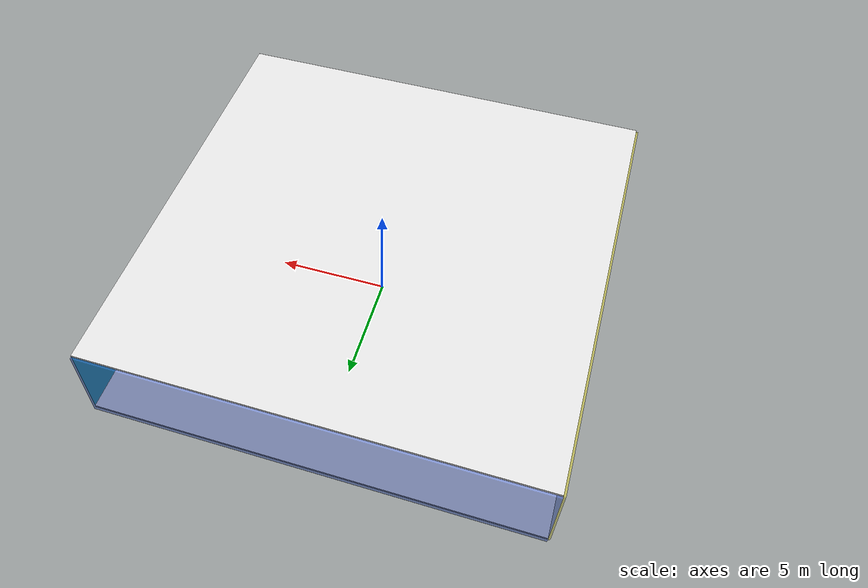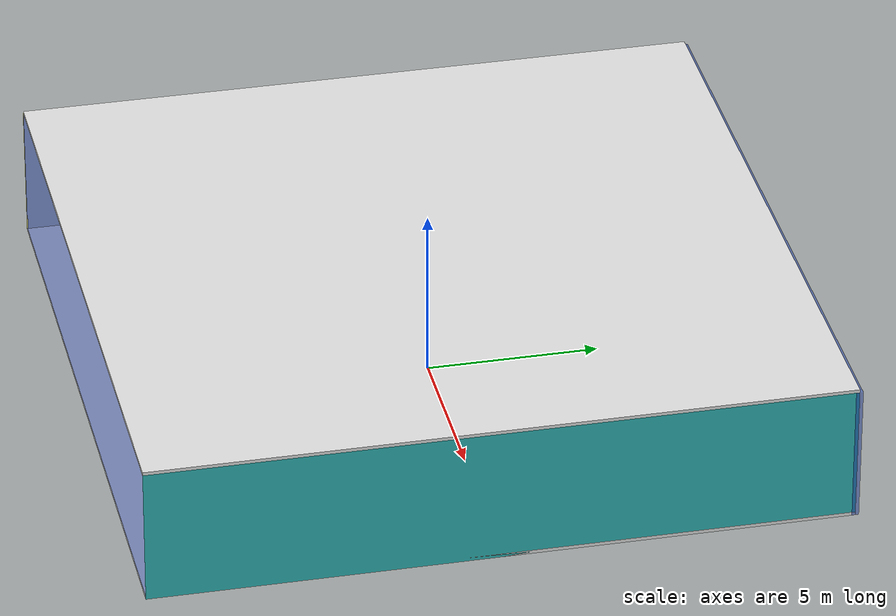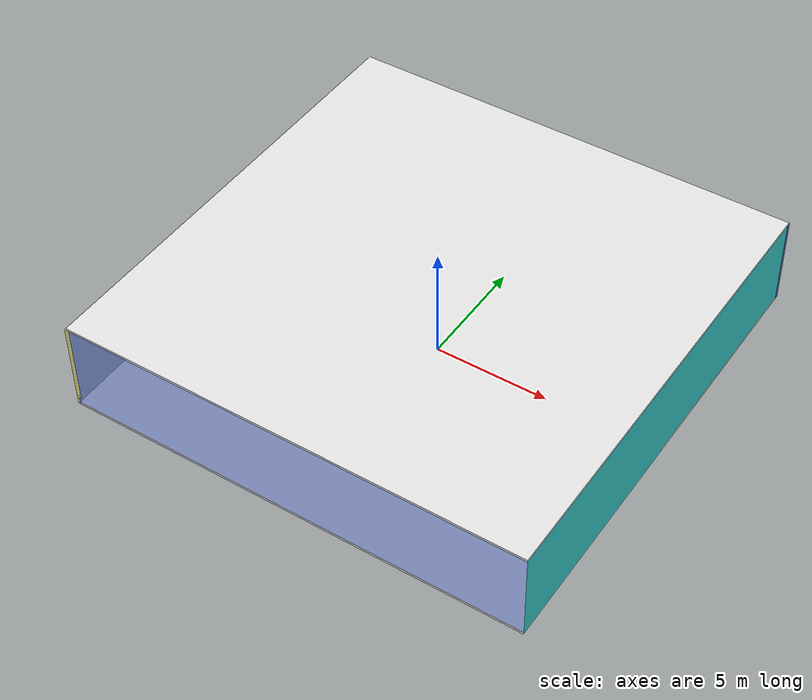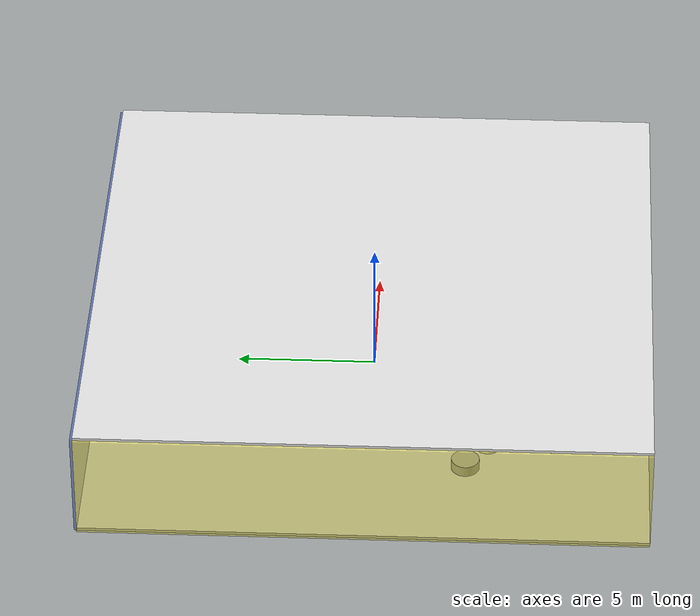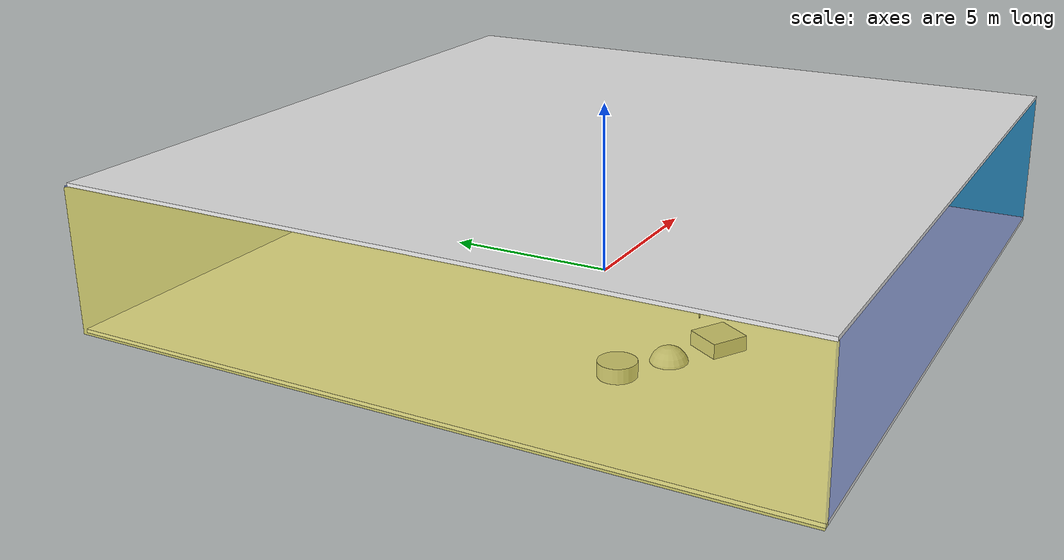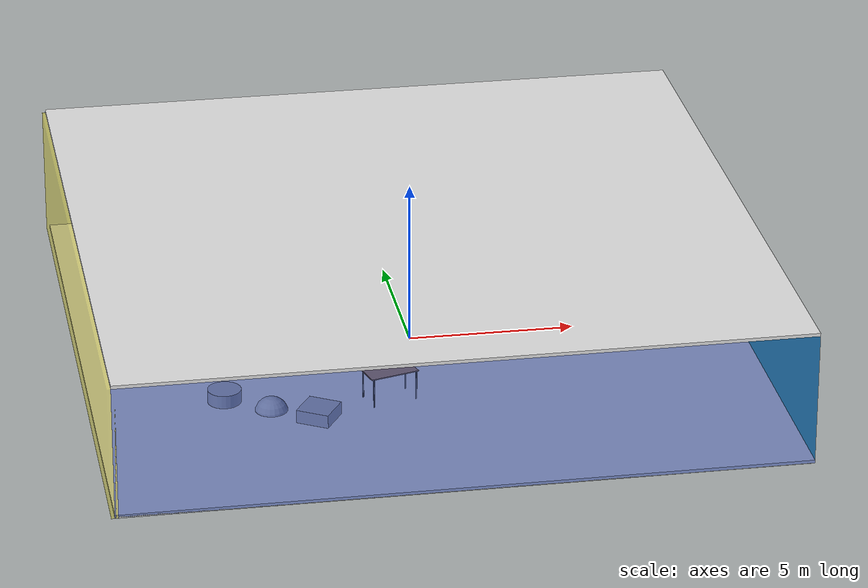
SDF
<sdf version="1.4">
 <world name="default">
  <physics type="ode">
   <max_step_size>0.001</max_step_size>
   <real_time_factor>1</real_time_factor>
   <real_time_update_rate>1000</real_time_update_rate>
   <gravity>0 0 -9.8</gravity>
  </physics>
  <scene><ambient>0.4 0.4 0.4 1</ambient><background>0.7 0.7 0.7 1</background><shadows>1</shadows></scene>
  <model name="Surrounding">
   <static>1</static>
   <link name="Ceiling">
    <collision name="Ceiling_Collision"><geometry><box><size>20 20 0.1</size></box></geometry></collision>
    <visual name="Ceiling_Visual">
     <geometry><box><size>20 20 0.1</size></box></geometry>
     <material>
      <script><uri>file://media/materials/scripts/gazebo.material</uri><name>Gazebo/White</name></script>
     </material>
    </visual>
    <pose>0 0 4.05 0 0 0</pose>
   </link>
   <link name="Wall_South">
    <collision name="Wall_South_Collision">
     <geometry><box><size>20 0 4</size></box></geometry>
     <pose>0 0 2 0 -0 0</pose>
    </collision>
    <visual name="Wall_South_Visual">
     <pose>0 0 2 0 -0 0</pose>
     <geometry><box><size>20 0 4</size></box></geometry>
     <material>
      <script><uri>file://media/materials/scripts/gazebo.material</uri><name>Gazebo/BlueTransparent</name></script>
     </material>
    </visual>
    <velocity_decay><linear>0</linear><angular>0</angular></velocity_decay>
    <pose>0 -10 0 0 -0 0</pose>
   </link>
   <link name="Wall_East">
    <collision name="Wall_21_Collision">
     <geometry><box><size>20 0 4</size></box></geometry>
     <pose>0 0 2 0 -0 0</pose>
    </collision>
    <visual name="Wall_21_Visual">
     <pose>0 0 2 0 -0 0</pose>
     <geometry><box><size>20 0 4</size></box></geometry>
     <material>
      <script>
       <uri>file://media/materials/scripts/gazebo.material</uri>
       <name>Gazebo/TurquoiseGlowOutline</name>
      </script>
     </material>
    </visual>
    <velocity_decay><linear>0</linear><angular>0</angular></velocity_decay>
    <pose>10 0 0 0 -0 1.5708</pose>
   </link>
   <link name="Wall_North">
    <collision name="Wall_22_Collision">
     <geometry><box><size>20 0.2 4</size></box></geometry>
     <pose>0 0 2 0 -0 0</pose>
    </collision>
    <visual name="Wall_22_Visual">
     <pose>0 0 2 0 -0 0</pose>
     <geometry><box><size>20 0.2 4</size></box></geometry>
     <material>
      <script><uri>file://media/materials/scripts/gazebo.material</uri><name>Gazebo/BlueTransparent</name></script>
     </material>
    </visual>
    <velocity_decay><linear>0</linear><angular>0</angular></velocity_decay>
    <pose>0 10 0 0 -0 0</pose>
   </link>
   <link name="Wall_West">
    <collision name="Wall_23_Collision">
     <geometry><box><size>20 0.2 4</size></box></geometry>
     <pose>0 0 2 0 -0 0</pose>
    </collision>
    <visual name="Wall_23_Visual">
     <pose>0 0 2 0 -0 0</pose>
     <geometry><box><size>20 0.2 4</size></box></geometry>
     <material>
      <script>
       <uri>file://media/materials/scripts/gazebo.material</uri>
       <name>Gazebo/YellowTransparent</name>
      </script>
     </material>
    </visual>
    <velocity_decay><linear>0</linear><angular>0</angular></velocity_decay>
    <pose>-10 0 0 0 0 -1.5708</pose>
   </link>
   <link name="Ground_link">
    <collision name="collision">
     <pose>0 0 .05 0 -0 0</pose>
     <geometry><box><size>20 20 0.1</size></box></geometry>
    </collision>
    <visual name="visual">
     <pose>0 0 .05 0 -0 0</pose>
     <geometry><box><size>20 20 0.1</size></box></geometry>
     <material>
      <script><uri>file://media/materials/scripts/gazebo.material</uri><name>Gazebo/WhiteGlow</name></script>
     </material>
    </visual>
   </link>
   <static>1</static>
  </model>
  <spherical_coordinates>
   <surface_model>EARTH_WGS84</surface_model>
   <latitude_deg>0</latitude_deg>
   <longitude_deg>0</longitude_deg>
   <elevation>0</elevation>
   <heading_deg>0</heading_deg>
  </spherical_coordinates>
  <light name="lightball_0" type="diffuse">
   <diffuse>0.8 0.8 0.8 1</diffuse>
   <specular>0.2 0.2 0.2 1</specular>
   <attenuation>
    <range>100</range>
    <constant>0.7</constant>
    <linear>0.01</linear>
    <quadratic>0.001</quadratic>
   </attenuation>
   <direction>-0.5 0.1 -0.9</direction>
   <pose>5.11674598602 -7.29430345891 2.63261148792 0 0 0</pose>
  </light>
  <light name="lightball_1" type="diffuse">
   <diffuse>0.8 0.8 0.8 1</diffuse>
   <specular>0.2 0.2 0.2 1</specular>
   <attenuation>
    <range>100</range>
    <constant>0.7</constant>
    <linear>0.01</linear>
    <quadratic>0.001</quadratic>
   </attenuation>
   <direction>-0.5 0.1 -0.9</direction>
   <pose>8.55021767449 -7.47615077715 1.38534424696 0 0 0</pose>
  </light>
  <light name="lightball_2" type="diffuse">
   <diffuse>0.8 0.8 0.8 1</diffuse>
   <specular>0.2 0.2 0.2 1</specular>
   <attenuation>
    <range>100</range>
    <constant>0.7</constant>
    <linear>0.01</linear>
    <quadratic>0.001</quadratic>
   </attenuation>
   <direction>-0.5 0.1 -0.9</direction>
   <pose>-9.59768443067 -1.84598486549 2.13903515653 0 0 0</pose>
  </light>
  <light name="lightball_3" type="diffuse">
   <diffuse>0.8 0.8 0.8 1</diffuse>
   <specular>0.2 0.2 0.2 1</specular>
   <attenuation>
    <range>100</range>
    <constant>0.7</constant>
    <linear>0.01</linear>
    <quadratic>0.001</quadratic>
   </attenuation>
   <direction>-0.5 0.1 -0.9</direction>
   <pose>-5.85292087503 1.89759735936 3.22783219008 0 0 0</pose>
  </light>
  <light name="lightball_4" type="diffuse">
   <diffuse>0.8 0.8 0.8 1</diffuse>
   <specular>0.2 0.2 0.2 1</specular>
   <attenuation>
    <range>100</range>
    <constant>0.7</constant>
    <linear>0.01</linear>
    <quadratic>0.001</quadratic>
   </attenuation>
   <direction>-0.5 0.1 -0.9</direction>
   <pose>-9.84288912503 -7.74594865556 0.71273378439 0 0 0</pose>
  </light>
  <light name="lightball_5" type="diffuse">
   <diffuse>0.8 0.8 0.8 1</diffuse>
   <specular>0.2 0.2 0.2 1</specular>
   <attenuation>
    <range>100</range>
    <constant>0.7</constant>
    <linear>0.01</linear>
    <quadratic>0.001</quadratic>
   </attenuation>
   <direction>-0.5 0.1 -0.9</direction>
   <pose>5.74896314789 -6.02566386598 2.3021746461 0 0 0</pose>
  </light>
  <light name="lightball_6" type="diffuse">
   <diffuse>0.8 0.8 0.8 1</diffuse>
   <specular>0.2 0.2 0.2 1</specular>
   <attenuation>
    <range>100</range>
    <constant>0.7</constant>
    <linear>0.01</linear>
    <quadratic>0.001</quadratic>
   </attenuation>
   <direction>-0.5 0.1 -0.9</direction>
   <pose>9.64047818013 -5.55444698716 3.00347174916 0 0 0</pose>
  </light>
  <light name="lightball_7" type="diffuse">
   <diffuse>0.8 0.8 0.8 1</diffuse>
   <specular>0.2 0.2 0.2 1</specular>
   <attenuation>
    <range>100</range>
    <constant>0.7</constant>
    <linear>0.01</linear>
    <quadratic>0.001</quadratic>
   </attenuation>
   <direction>-0.5 0.1 -0.9</direction>
   <pose>1.13367844865 -3.92807420875 3.22293531749 0 0 0</pose>
  </light>
  <light name="lightball_8" type="diffuse">
   <diffuse>0.8 0.8 0.8 1</diffuse>
   <specular>0.2 0.2 0.2 1</specular>
   <attenuation>
    <range>100</range>
    <constant>0.7</constant>
    <linear>0.01</linear>
    <quadratic>0.001</quadratic>
   </attenuation>
   <direction>-0.5 0.1 -0.9</direction>
   <pose>9.71794153995 5.05612776773 2.35055717266 0 0 0</pose>
  </light>
  <light name="lightball_9" type="diffuse">
   <diffuse>0.8 0.8 0.8 1</diffuse>
   <specular>0.2 0.2 0.2 1</specular>
   <attenuation>
    <range>100</range>
    <constant>0.7</constant>
    <linear>0.01</linear>
    <quadratic>0.001</quadratic>
   </attenuation>
   <direction>-0.5 0.1 -0.9</direction>
   <pose>3.83078830564 -3.75317090382 2.11245238046 0 0 0</pose>
  </light>
  <light name="lightball_10" type="diffuse">
   <diffuse>0.8 0.8 0.8 1</diffuse>
   <specular>0.2 0.2 0.2 1</specular>
   <attenuation>
    <range>100</range>
    <constant>0.7</constant>
    <linear>0.01</linear>
    <quadratic>0.001</quadratic>
   </attenuation>
   <direction>-0.5 0.1 -0.9</direction>
   <pose>1.5206234567 9.78852346609 2.92100544281 0 0 0</pose>
  </light>
  <light name="lightball_11" type="diffuse">
   <diffuse>0.8 0.8 0.8 1</diffuse>
   <specular>0.2 0.2 0.2 1</specular>
   <attenuation>
    <range>100</range>
    <constant>0.7</constant>
    <linear>0.01</linear>
    <quadratic>0.001</quadratic>
   </attenuation>
   <direction>-0.5 0.1 -0.9</direction>
   <pose>-7.06040024047 7.91102247134 2.74817612106 0 0 0</pose>
  </light>
  <light name="lightball_12" type="diffuse">
   <diffuse>0.8 0.8 0.8 1</diffuse>
   <specular>0.2 0.2 0.2 1</specular>
   <attenuation>
    <range>100</range>
    <constant>0.7</constant>
    <linear>0.01</linear>
    <quadratic>0.001</quadratic>
   </attenuation>
   <direction>-0.5 0.1 -0.9</direction>
   <pose>-9.12526496631 4.90573054375 1.225143144 0 0 0</pose>
  </light>
  <light name="lightball_13" type="diffuse">
   <diffuse>0.8 0.8 0.8 1</diffuse>
   <specular>0.2 0.2 0.2 1</specular>
   <attenuation>
    <range>100</range>
    <constant>0.7</constant>
    <linear>0.01</linear>
    <quadratic>0.001</quadratic>
   </attenuation>
   <direction>-0.5 0.1 -0.9</direction>
   <pose>2.17259687547 -2.2452204543 1.7196464599 0 0 0</pose>
  </light>
  <include>
   <uri>model://textured_shapes</uri>
   <pose>-4.8126102885 -4.25454189663 0 0 0 1.02337164685</pose>
  </include>
  <include><uri>model://table</uri><pose>-1.28738674039 -4.05928390208 0 0 0 0.273070960026</pose></include>
  <include>
   <uri>model://construction_cone</uri>
   <pose>-1.24355241433 1.13638429859 0 0 0 3.06305693785</pose>
  </include>
  <include>
   <uri>model://construction_cone</uri>
   <pose>-1.25039120019 3.73557216234 0 0 0 0.61422225974</pose>
  </include>
  <include>
   <uri>model://robocup_3Dsim_goal</uri>
   <pose>2.24167110747 1.08619056705 0 0 0 2.33660662595</pose>
  </include>
  <include><uri>model://cabinet</uri><pose>7.54767815981 1.66130366478 0 0 0 0.409694005119</pose></include>
 </world>
</sdf>

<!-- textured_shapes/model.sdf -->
<sdf version="1.6">
  <model name="textured_shapes">
    <pose>0 0 0.5 0 0 0</pose>
    <link name="box">
      <pose>0 -1.5 0 0 0 0</pose>
      <collision name="collision">
        <geometry>
          <box>
            <size>1 1 1</size>
          </box>
        </geometry>
      </collision>
      <visual name="visual">
        <geometry>
          <box>
            <size>1 1 1</size>
          </box>
        </geometry>
        <material>
          <script>
            <uri>model://../model_source/models/textured_shapes/materials/scripts</uri>
            <uri>model://../model_source/models/textured_shapes/materials/textures</uri>
            <name>TexturedShape/Squares</name>
          </script>
        </material>
      </visual>
    </link>
    <link name="sphere">
      <collision name="collision">
        <geometry>
          <sphere>
            <radius>0.5</radius>
          </sphere>
        </geometry>
      </collision>
      <visual name="visual">
        <geometry>
          <sphere>
            <radius>0.5</radius>
          </sphere>
        </geometry>
        <material>
          <script>
            <uri>model://../model_source/models/textured_shapes/materials/scripts</uri>
            <uri>model://../model_source/models/textured_shapes/materials/textures</uri>
            <name>TexturedShape/Squares</name>
          </script>
        </material>
      </visual>
    </link>
    <link name="cylinder">
      <pose>0 1.5 0 0 0 0</pose>
      <collision name="collision">
        <geometry>
          <cylinder>
            <radius>0.5</radius>
            <length>1</length>
          </cylinder>
        </geometry>
      </collision>
      <visual name="visual">
        <geometry>
          <cylinder>
            <radius>0.5</radius>
            <length>1</length>
          </cylinder>
        </geometry>
        <material>
          <script>
            <uri>model://../model_source/models/textured_shapes/materials/scripts</uri>
            <uri>model://../model_source/models/textured_shapes/materials/textures</uri>
            <name>TexturedShape/Squares</name>
          </script>
        </material>
      </visual>
    </link>
  </model>
</sdf>

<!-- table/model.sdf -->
<sdf version="1.5">
  <model name="table">
    <static>true</static>
    <link name="link">
      <collision name="surface">
        <pose>0 0 1.0 0 0 0</pose>
        <geometry>
          <box>
            <size>1.5 0.8 0.03</size>
          </box>
        </geometry>
        <surface>
          <friction>
            <ode>
              <mu>0.6</mu>
              <mu2>0.6</mu2>
            </ode>
          </friction>
        </surface>
      </collision>
      <visual name="visual1">
        <pose>0 0 1.0 0 0 0</pose>
        <geometry>
          <box>
            <size>1.5 0.8 0.03</size>
          </box>
        </geometry>
        <material>
          <script>
            <uri>model://media/materials/scripts/gazebo.material</uri>
            <name>Gazebo/Wood</name>
          </script>
        </material>
      </visual>
      <collision name="front_left_leg">
        <pose>0.68 0.38 0.5 0 0 0</pose>
        <geometry>
          <cylinder>
            <radius>0.02</radius>
            <length>1.0</length>
          </cylinder>
        </geometry>
      </collision>
      <visual name="front_left_leg">
        <pose>0.68 0.38 0.5 0 0 0</pose>
        <geometry>
          <cylinder>
            <radius>0.02</radius>
            <length>1.0</length>
          </cylinder>
        </geometry>
        <material>
          <script>
            <uri>model://media/materials/scripts/gazebo.material</uri>
            <name>Gazebo/Grey</name>
          </script>
        </material>
      </visual>
      <collision name="front_right_leg">
        <pose>0.68 -0.38 0.5 0 0 0</pose>
        <geometry>
          <cylinder>
            <radius>0.02</radius>
            <length>1.0</length>
          </cylinder>
        </geometry>
      </collision>
      <visual name="front_right_leg">
        <pose>0.68 -0.38 0.5 0 0 0</pose>
        <geometry>
          <cylinder>
            <radius>0.02</radius>
            <length>1.0</length>
          </cylinder>
        </geometry>
        <material>
          <script>
            <uri>model://media/materials/scripts/gazebo.material</uri>
            <name>Gazebo/Grey</name>
          </script>
        </material>
      </visual>
      <collision name="back_right_leg">
        <pose>-0.68 -0.38 0.5 0 0 0</pose>
        <geometry>
          <cylinder>
            <radius>0.02</radius>
            <length>1.0</length>
          </cylinder>
        </geometry>
      </collision>
      <visual name="back_right_leg">
        <pose>-0.68 -0.38 0.5 0 0 0</pose>
        <geometry>
          <cylinder>
            <radius>0.02</radius>
            <length>1.0</length>
          </cylinder>
        </geometry>
        <material>
          <script>
            <uri>model://media/materials/scripts/gazebo.material</uri>
            <name>Gazebo/Grey</name>
          </script>
        </material>
      </visual>
      <collision name="back_left_leg">
        <pose>-0.68 0.38 0.5 0 0 0</pose>
        <geometry>
          <cylinder>
            <radius>0.02</radius>
            <length>1.0</length>
          </cylinder>
        </geometry>
      </collision>
      <visual name="back_left_leg">
        <pose>-0.68 0.38 0.5 0 0 0</pose>
        <geometry>
          <cylinder>
            <radius>0.02</radius>
            <length>1.0</length>
          </cylinder>
        </geometry>
        <material>
          <script>
            <uri>model://media/materials/scripts/gazebo.material</uri>
            <name>Gazebo/Grey</name>
          </script>
        </material>
      </visual>
    </link>
  </model>
</sdf>

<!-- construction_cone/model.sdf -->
<sdf version="1.5">
  <model name="Construction Cone">
    <link name="link">
      <collision name="collision">
        <geometry>
          <mesh>
            <scale>10 10 10</scale>
            <uri>file://isr-testbed/construction_cone/meshes/construction_cone.dae</uri>
          </mesh>
        </geometry>
      </collision>
      <visual name="visual">
        <geometry>
          <mesh>
            <scale>10 10 10</scale>
            <uri>file://isr-testbed/construction_cone/meshes/construction_cone.dae</uri>
          </mesh>
        </geometry>
      </visual>
    </link>
  </model>
</sdf>

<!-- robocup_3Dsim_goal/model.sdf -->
<sdf version="1.5">
  <model name="robocup_3d_goal">
    <static>true</static>
    <link name="left_post">
      <pose>0 1.05 0.45 0 0 0</pose>
      <collision name="collision">
        <geometry>
          <cylinder>
            <radius>0.05</radius>
            <length>0.9</length>
          </cylinder>
        </geometry>
      </collision>
      <visual name="visual">
        <geometry>
          <cylinder>
            <radius>0.05</radius>
            <length>0.9</length>
          </cylinder>
        </geometry>
        <material>
          <script>
            <uri>file://media/materials/scripts/gazebo.material</uri>
            <name>Gazebo/ZincYellow</name>
          </script>
        </material>
      </visual>
    </link>
    <link name="left_support_horiz_lower">
      <pose>0.30 1.05 0.01 0 0 0</pose>
      <collision name="collision">
        <geometry>
          <box>
            <size>0.50 0.02 0.02</size>
          </box>
        </geometry>
      </collision>
      <visual name="visual">
        <geometry>
          <box>
            <size>0.50 0.02 0.02</size>
          </box>
        </geometry>
        <material>
          <script>
            <uri>file://media/materials/scripts/gazebo.material</uri>
            <name>Gazebo/White</name>
          </script>
        </material>
      </visual>
    </link>
    <link name="left_support_horiz_upper">
      <pose>0.30 1.05 0.79 0 0 0</pose>
      <collision name="collision">
        <geometry>
          <box>
            <size>0.50 0.02 0.02</size>
          </box>
        </geometry>
      </collision>
      <visual name="visual">
        <geometry>
          <box>
            <size>0.50 0.02 0.02</size>
          </box>
        </geometry>
        <material>
          <script>
            <uri>file://media/materials/scripts/gazebo.material</uri>
            <name>Gazebo/White</name>
          </script>
        </material>
      </visual>
    </link>
    <link name="left_support_vertical">
      <pose>0.56 1.05 0.4 0 1.5708 0</pose>
      <collision name="collision">
        <geometry>
          <box>
            <size>0.80 0.02 0.02</size>
          </box>
        </geometry>
      </collision>
      <visual name="visual">
        <geometry>
          <box>
            <size>0.80 0.02 0.02</size>
          </box>
        </geometry>
        <material>
          <script>
            <uri>file://media/materials/scripts/gazebo.material</uri>
            <name>Gazebo/White</name>
          </script>
        </material>
      </visual>
    </link>
    <link name="right_support_horiz_lower">
      <pose>0.30 -1.05 0.01 0 0 0</pose>
      <collision name="collision">
        <geometry>
          <box>
            <size>0.50 0.02 0.02</size>
          </box>
        </geometry>
      </collision>
      <visual name="visual">
        <geometry>
          <box>
            <size>0.50 0.02 0.02</size>
          </box>
        </geometry>
        <material>
          <script>
            <uri>file://media/materials/scripts/gazebo.material</uri>
            <name>Gazebo/White</name>
          </script>
        </material>
      </visual>
    </link>
    <link name="right_support_horiz_upper">
      <pose>0.30 -1.05 0.79 0 0 0</pose>
      <collision name="collision">
        <geometry>
          <box>
            <size>0.50 0.02 0.02</size>
          </box>
        </geometry>
      </collision>
      <visual name="visual">
        <geometry>
          <box>
            <size>0.50 0.02 0.02</size>
          </box>
        </geometry>
        <material>
          <script>
            <uri>file://media/materials/scripts/gazebo.material</uri>
            <name>Gazebo/White</name>
          </script>
        </material>
      </visual>
    </link>
    <link name="right_support_vertical">
      <pose>0.56 -1.05 0.4 0 1.5708 0</pose>
      <collision name="collision">
        <geometry>
          <box>
            <size>0.80 0.02 0.02</size>
          </box>
        </geometry>
      </collision>
      <visual name="visual">
        <geometry>
          <box>
            <size>0.80 0.02 0.02</size>
          </box>
        </geometry>
        <material>
          <script>
            <uri>file://media/materials/scripts/gazebo.material</uri>
            <name>Gazebo/White</name>
          </script>
        </material>
      </visual>
    </link>
    <link name="center_support_horiz_lower">
      <pose>0.56 0 0.01 0 1.5708 0</pose>
      <collision name="collision">
        <geometry>
          <box>
            <size>0.02 2.08 0.02</size>
          </box>
        </geometry>
      </collision>
      <visual name="visual">
        <geometry>
          <box>
            <size>0.02 2.08 0.02</size>
          </box>
        </geometry>
        <material>
          <script>
            <uri>file://media/materials/scripts/gazebo.material</uri>
            <name>Gazebo/White</name>
          </script>
        </material>
      </visual>
    </link>
    <link name="center_support_horiz_upper">
      <pose>0.56 0 0.79 0 1.5708 0</pose>
      <collision name="collision">
        <geometry>
          <box>
            <size>0.02 2.08 0.02</size>
          </box>
        </geometry>
      </collision>
      <visual name="visual">
        <geometry>
          <box>
            <size>0.02 2.08 0.02</size>
          </box>
        </geometry>
        <material>
          <script>
            <uri>file://media/materials/scripts/gazebo.material</uri>
            <name>Gazebo/White</name>
          </script>
        </material>
      </visual>
    </link>
    <link name="right_post">
      <pose>0 -1.05 0.45 0 0 0</pose>
      <collision name="collision">
        <geometry>
          <cylinder>
            <radius>0.05</radius>
            <length>0.9</length>
          </cylinder>
        </geometry>
      </collision>
      <visual name="visual">
        <geometry>
          <cylinder>
            <radius>0.05</radius>
            <length>0.9</length>
          </cylinder>
        </geometry>
        <material>
          <script>
            <uri>file://media/materials/scripts/gazebo.material</uri>
            <name>Gazebo/ZincYellow</name>
          </script>
        </material>
      </visual>
    </link>
    <link name="crossbar">
      <pose>0 0 0.85 1.57 1.57 0</pose>
      <collision name="collision">
        <geometry>
          <cylinder>
            <radius>0.05</radius>
            <length>2.0</length>
          </cylinder>
        </geometry>
      </collision>
      <visual name="visual">
        <geometry>
          <cylinder>
            <radius>0.05</radius>
            <length>2.0</length>
          </cylinder>
        </geometry>
        <material>
          <script>
            <uri>file://media/materials/scripts/gazebo.material</uri>
            <name>Gazebo/ZincYellow</name>
          </script>
        </material>
      </visual>
    </link>
    <link name="center_net">
      <pose>0.56 0 0.40 0 0 0</pose>
      <collision name="collision">
        <geometry>
          <box>
            <size>0.01 2.1 0.80</size>
          </box>
        </geometry>
      </collision>
      <visual name="visual">
        <geometry>
          <box>
            <size>0.01 2.1 0.80</size>
          </box>
        </geometry>
        <material>
          <script>
            <uri>model://../model_source/models/robocup09_spl_field/materials/scripts/</uri>
            <uri>model://../model_source/models/robocup09_spl_field/materials/textures/</uri>
            <name>RoboCup/Net</name>
          </script>
        </material>
      </visual>
    </link>
    <link name="left_net">
      <pose>0.30 1.05 0.40 0 0 0</pose>
      <collision name="collision">
        <geometry>
          <box>
            <size>0.50 0.01 0.76</size>
          </box>
        </geometry>
      </collision>
      <visual name="visual">
        <geometry>
          <box>
            <size>0.50 0.01 0.76</size>
          </box>
        </geometry>
        <material>
          <script>
            <uri>model://../model_source/models/robocup09_spl_field/materials/scripts/</uri>
            <uri>model://../model_source/models/robocup09_spl_field/materials/textures/</uri>
            <name>RoboCup/Net</name>
          </script>
        </material>
      </visual>
    </link>
    <link name="right_net">
      <pose>0.30 -1.05 0.40 0 0 0</pose>
      <collision name="collision">
        <geometry>
          <box>
            <size>0.50 0.01 0.76</size>
          </box>
        </geometry>
      </collision>
      <visual name="visual">
        <geometry>
          <box>
            <size>0.50 0.01 0.76</size>
          </box>
        </geometry>
        <material>
          <script>
            <uri>model://../model_source/models/robocup09_spl_field/materials/scripts/</uri>
            <uri>model://../model_source/models/robocup09_spl_field/materials/textures/</uri>
            <name>RoboCup/Net</name>
          </script>
        </material>
      </visual>
    </link>
  </model>
</sdf>

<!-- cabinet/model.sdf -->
<sdf version="1.5">
  <model name="cabinet">
    <static>true</static>
    <link name="cabinet_bottom_plate">
      <inertial>
        <pose>0 0 -1 0 0 0</pose>
        <inertia>
          <ixx>2.050000</ixx>
          <ixy>0</ixy>
          <ixz>0</ixz>
          <iyy>2.050000</iyy>
          <iyz>0</iyz>
          <izz>2.050000</izz>
        </inertia>
        <mass>25.000000</mass>
      </inertial>
      <collision name="cabinet_bottom_plate_geom">
        <pose>0 0 0.010000 0 0 0</pose>
        <geometry>
          <box>
            <size>0.450000 0.450000 0.020000</size>
          </box>
        </geometry>
      </collision>
      <visual name="cabinet_bottom_plate_geom_visual">
        <pose>0 0 0.010000 0 0 0</pose>
        <geometry>
          <box>
            <size>0.450000 0.450000 0.020000</size>
          </box>
        </geometry>
        <material>
          <script>
            <uri>model://media/materials/scripts/gazebo.material</uri>
            <name>Gazebo/Wood</name>
          </script>
        </material>
      </visual>
      <collision name="cabinet_bottom_plate_geom_cabinet_back_plate">
        <pose>0.235000 0 0.510000 0 0 0</pose>
        <geometry>
          <box>
            <size>0.020000 0.450000 1.020000</size>
          </box>
        </geometry>
      </collision>
      <visual name="cabinet_bottom_plate_geom_cabinet_back_plate_visual">
        <pose>0.235000 0 0.510000 0 0 0</pose>
        <geometry>
          <box>
            <size>0.020000 0.450000 1.020000</size>
          </box>
        </geometry>
        <material>
          <script>
            <uri>model://media/materials/scripts/gazebo.material</uri>
            <name>Gazebo/Wood</name>
          </script>
        </material>
      </visual>
      <collision name="cabinet_bottom_plate_geom_cabinet_left_plate">
        <pose>0 0.235000 0.510000 0 0 0</pose>
        <geometry>
          <box>
            <size>0.450000 0.020000 1.020000</size>
          </box>
        </geometry>
      </collision>
      <visual name="cabinet_bottom_plate_geom_cabinet_left_plate_visual">
        <pose>0 0.235000 0.510000 0 0 0</pose>
        <geometry>
          <box>
            <size>0.450000 0.020000 1.020000</size>
          </box>
        </geometry>
        <material>
          <script>
            <uri>model://media/materials/scripts/gazebo.material</uri>
            <name>Gazebo/Wood</name>
          </script>
        </material>
      </visual>
      <collision name="cabinet_bottom_plate_geom_cabinet_middle_plate">
        <pose>0 0 0.510000 0 0 0</pose>
        <geometry>
          <box>
            <size>0.450000 0.450000 0.020000</size>
          </box>
        </geometry>
      </collision>
      <visual name="cabinet_bottom_plate_geom_cabinet_middle_plate_visual">
        <pose>0 0 0.510000 0 0 0</pose>
        <geometry>
          <box>
            <size>0.450000 0.450000 0.020000</size>
          </box>
        </geometry>
        <material>
          <script>
            <uri>model://media/materials/scripts/gazebo.material</uri>
            <name>Gazebo/Wood</name>
          </script>
        </material>
      </visual>
      <collision name="cabinet_bottom_plate_geom_cabinet_right_plate">
        <pose>0 -0.235000 0.510000 0 0 0</pose>
        <geometry>
          <box>
            <size>0.450000 0.020000 1.020000</size>
          </box>
        </geometry>
      </collision>
      <visual name="cabinet_bottom_plate_geom_cabinet_right_plate_visual">
        <pose>0 -0.235000 0.510000 0 0 0</pose>
        <geometry>
          <box>
            <size>0.450000 0.020000 1.020000</size>
          </box>
        </geometry>
        <material>
          <script>
            <uri>model://media/materials/scripts/gazebo.material</uri>
            <name>Gazebo/Wood</name>
          </script>
        </material>
      </visual>
      <collision name="cabinet_bottom_plate_geom_cabinet_top_plate">
        <pose>0 0 1.010000 0 0 0</pose>
        <geometry>
          <box>
            <size>0.450000 0.450000 0.020000</size>
          </box>
        </geometry>
      </collision>
      <visual name="cabinet_bottom_plate_geom_cabinet_top_plate_visual">
        <pose>0 0 1.010000 0 0 0</pose>
        <geometry>
          <box>
            <size>0.450000 0.450000 0.020000</size>
          </box>
        </geometry>
        <material>
          <script>
            <uri>model://media/materials/scripts/gazebo.material</uri>
            <name>Gazebo/Wood</name>
          </script>
        </material>
      </visual>
    </link>
  </model>
</sdf>
